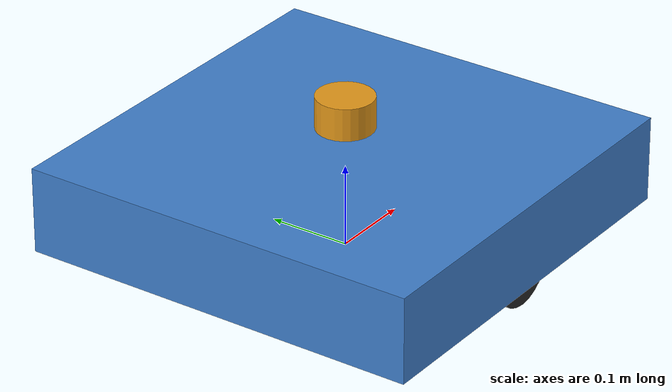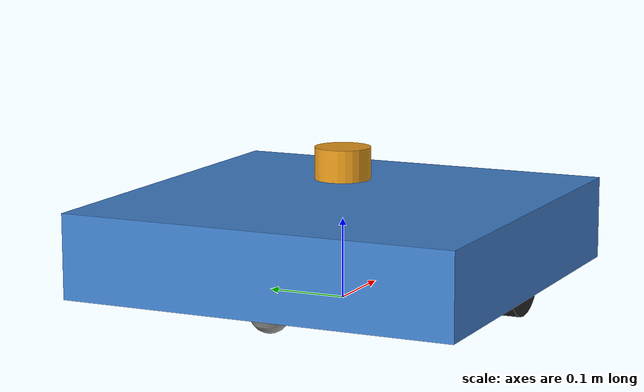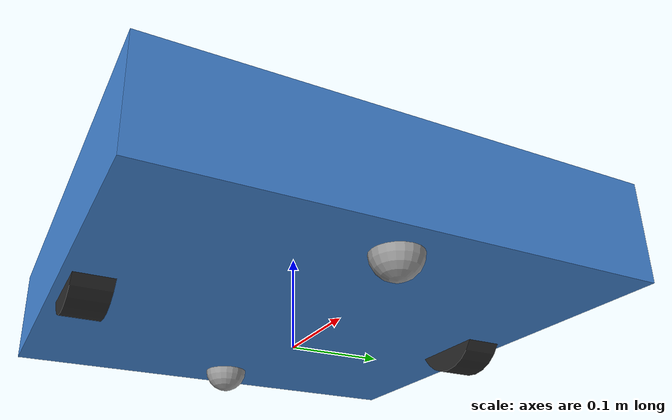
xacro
<?xml version="1.0"?>
<robot name="agv_500" xmlns:xacro="http://www.ros.org/wiki/xacro">

  <!-- 由 sim.launch.py 传入：使用 robot_localization EKF 融合里程计时置 false，
       让 EKF 独占 odom→base_footprint 的 TF（详见 plugins/gazebo_classic.xacro）。 -->
  <xacro:arg name="publish_odom_tf" default="true"/>

  <!-- ==================== 可调参数：只改这里 ==================== -->
  <xacro:property name="PI" value="3.141592653589793"/>

  <!-- 车体 -->
  <xacro:property name="body_L"    value="0.500"/>
  <xacro:property name="body_W"    value="0.500"/>
  <xacro:property name="body_H"    value="0.105"/>   <!-- 底盘厚 -->
  <xacro:property name="clearance" value="0.025"/>   <!-- 离地间隙（主流差速底盘：电机在底盘内，轮子嵌入属正常） -->
  <xacro:property name="body_mass" value="20.0"/>    <!-- 整备质量 -->

  <!-- 驱动轮 -->
  <xacro:property name="wheel_R"    value="0.050"/>  <!-- 半径 -->
  <xacro:property name="wheel_W"    value="0.040"/>  <!-- 轮宽 -->
  <xacro:property name="track"      value="0.440"/>  <!-- 轮距(左右轮心距, 沿 Y) -->
  <xacro:property name="drive_x"    value="0.000"/>  <!-- 驱动轴纵向位置(X): 0 = 居中 -->
  <xacro:property name="wheel_mass" value="0.5"/>

  <!-- 万向轮（前后各一，位于车体中线上 y = 0） -->
  <xacro:property name="caster_R"    value="0.025"/>
  <xacro:property name="caster_fx"   value="0.200"/> <!-- 前万向轮 X -->
  <xacro:property name="caster_rx"   value="-0.200"/><!-- 后万向轮 X -->
  <xacro:property name="caster_mass" value="0.2"/>

  <!-- 激光雷达：装在车体几何中心，扫描面 z = 0.170（高于底盘顶面 0.130） -->
  <xacro:property name="laser_R"    value="0.035"/>
  <xacro:property name="laser_H"    value="0.040"/>
  <xacro:property name="laser_x"    value="0.000"/>  <!-- 纵向位置(X): 车体几何中心（与 IMU 同轴） -->
  <xacro:property name="laser_z"    value="0.170"/>  <!-- 扫描面高度(光学中心) -->
  <xacro:property name="laser_mass" value="0.2"/>

  <xacro:property name="laser_scan_min" value="${-PI}"/>
  <xacro:property name="laser_scan_max" value="${PI}"/>
  <!-- 采样数：保持 1°/点（360° → 361 点，首尾重合于 ±π） -->
  <xacro:property name="laser_samples" value="361"/>

  <!-- IMU -->
  <xacro:property name="imu_z"    value="0.100"/>
  <xacro:property name="imu_mass" value="0.05"/>

  <!-- ==================== 材质 ==================== -->
  <material name="c_body">  <color rgba="0.25 0.50 0.80 1.0"/></material>
  <material name="c_wheel"> <color rgba="0.15 0.15 0.15 1.0"/></material>
  <material name="c_caster"><color rgba="0.60 0.60 0.60 1.0"/></material>
  <material name="c_laser"> <color rgba="0.90 0.60 0.10 1.0"/></material>

  <!-- ==================== 引入各模块宏定义 ==================== -->
  <!-- 车体 -->
  <xacro:include filename="base.urdf.xacro"/>
  <!-- 执行器：驱动轮 + 万向轮 -->
  <xacro:include filename="actuator/wheel.urdf.xacro"/>
  <xacro:include filename="actuator/caster.urdf.xacro"/>
  <!-- 传感器：激光雷达 + IMU -->
  <xacro:include filename="sensor/laser.urdf.xacro"/>
  <xacro:include filename="sensor/imu.urdf.xacro"/>
  <!-- 仿真插件：Gazebo Classic 11 -->
  <xacro:include filename="plugins/gazebo_classic.xacro"/>

  <!-- ==================== 实例化：拼装整车 ==================== -->
  <!-- 车体 -->
  <xacro:base_xacro/>

  <!-- 驱动轮（左右布置，y = ±track/2；驱动轴 x = drive_x 居中） -->
  <xacro:wheel_xacro wheel_name="left"  y_pos="${track/2}"/>
  <xacro:wheel_xacro wheel_name="right" y_pos="${-track/2}"/>

  <!-- 万向轮（前后各一，中线上 y = 0） -->
  <xacro:caster_xacro caster_name="caster_front" cx="${caster_fx}"/>
  <xacro:caster_xacro caster_name="caster_rear"  cx="${caster_rx}"/>

  <!-- 传感器 -->
  <xacro:laser_xacro/>
  <xacro:imu_xacro/>

  <!-- ==================== 仿真插件实例化（Gazebo Classic 11） ==================== -->
  <xacro:gazebo_classic_plugins publish_odom_tf="$(arg publish_odom_tf)"
                                laser_samples="${laser_samples}"/>

</robot>

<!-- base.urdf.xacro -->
<robot xmlns:xacro="http://www.ros.org/wiki/xacro">

  <!-- 引入惯性宏库（重复 include 无副作用） -->
  <xacro:include filename="common_inertia.xacro"/>

  <!-- 实例化：生成 base_footprint 与 base_link（两驱动轮轴中点在地面的投影为原点） -->
  <xacro:macro name="base_xacro" params="">

    <!-- base_footprint：机器人在地面的投影点（空 link），TF 树的根 -->
    <link name="base_footprint"/>

    <!-- base_footprint -> base_link：固定关节，与投影点重合（z = 0） -->
    <joint name="base_footprint_joint" type="fixed">
      <parent link="base_footprint"/>
      <child  link="base_link"/>
      <origin xyz="0 0 0" rpy="0 0 0"/>
    </joint>

    <!-- base_link：车体包络盒（500 x 500 x 105 mm），底面离地 clearance -->
    <link name="base_link">
      <visual>
        <origin xyz="0 0 ${clearance + body_H/2}" rpy="0 0 0"/>
        <geometry><box size="${body_L} ${body_W} ${body_H}"/></geometry>
        <material name="c_body"/>
      </visual>
      <collision>
        <origin xyz="0 0 ${clearance + body_H/2}" rpy="0 0 0"/>
        <geometry><box size="${body_L} ${body_W} ${body_H}"/></geometry>
      </collision>
      <xacro:inertia_box m="${body_mass}" x="${body_L}" y="${body_W}" z="${body_H}" oz="${clearance + body_H/2}"/>
    </link>

  </xacro:macro>

</robot>

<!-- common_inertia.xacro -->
<robot xmlns:xacro="http://www.ros.org/wiki/xacro">

  <!-- 长方体惯性：m 质量；x/y/z 三边长；oz 形心 z 偏移 -->
  <xacro:macro name="inertia_box" params="m x y z oz">
    <inertial>
      <origin xyz="0 0 ${oz}" rpy="0 0 0"/>
      <mass value="${m}"/>
      <inertia ixx="${m*(y*y+z*z)/12}" ixy="0" ixz="0"
               iyy="${m*(x*x+z*z)/12}" iyz="0"
               izz="${m*(x*x+y*y)/12}"/>
    </inertial>
  </xacro:macro>

  <!-- 圆柱惯性：轴向沿 Y（驱动轮轮轴方向） -->
  <xacro:macro name="inertia_cyl_y" params="m r l">
    <inertial>
      <origin xyz="0 0 0" rpy="0 0 0"/>
      <mass value="${m}"/>
      <inertia ixx="${m*(3*r*r+l*l)/12}" ixy="0" ixz="0"
               iyy="${m*r*r/2}"           iyz="0"
               izz="${m*(3*r*r+l*l)/12}"/>
    </inertial>
  </xacro:macro>

  <!-- 圆柱惯性：轴向沿 Z（激光雷达外壳） -->
  <xacro:macro name="inertia_cyl_z" params="m r l">
    <inertial>
      <origin xyz="0 0 0" rpy="0 0 0"/>
      <mass value="${m}"/>
      <inertia ixx="${m*(3*r*r+l*l)/12}" ixy="0" ixz="0"
               iyy="${m*(3*r*r+l*l)/12}" iyz="0"
               izz="${m*r*r/2}"/>
    </inertial>
  </xacro:macro>

  <!-- 球体惯性：万向轮用 -->
  <xacro:macro name="inertia_sphere" params="m r">
    <inertial>
      <origin xyz="0 0 0" rpy="0 0 0"/>
      <mass value="${m}"/>
      <inertia ixx="${2*m*r*r/5}" ixy="0" ixz="0"
               iyy="${2*m*r*r/5}" iyz="0"
               izz="${2*m*r*r/5}"/>
    </inertial>
  </xacro:macro>

</robot>

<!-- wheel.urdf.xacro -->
<robot xmlns:xacro="http://www.ros.org/wiki/xacro">

  <!-- 引入惯性宏库：提供圆柱/长方体/球体惯性计算 -->
  <xacro:include filename="../common_inertia.xacro"/>

  <!-- 驱动轮宏：wheel_name = left/right（决定连杆与关节名）；y_pos = 轮心横向位置（±track/2） -->
  <xacro:macro name="wheel_xacro" params="wheel_name y_pos">

    <!-- 车轮 link：黑色扁圆柱 -->
    <link name="${wheel_name}_wheel">
      <visual>
        <origin xyz="0 0 0" rpy="${PI/2} 0 0"/>
        <geometry><cylinder radius="${wheel_R}" length="${wheel_W}"/></geometry>
        <material name="c_wheel"/>
      </visual>
      <collision>
        <origin xyz="0 0 0" rpy="${PI/2} 0 0"/>
        <geometry><cylinder radius="${wheel_R}" length="${wheel_W}"/></geometry>
      </collision>
      <xacro:inertia_cyl_y m="${wheel_mass}" r="${wheel_R}" l="${wheel_W}"/>
    </link>

    <!-- 驱动轮关节：continuous = 可无限旋转（没有角度上下限） -->
    <joint name="${wheel_name}_wheel_joint" type="continuous">
      <parent link="base_link"/>
      <child  link="${wheel_name}_wheel"/>

      <origin xyz="${drive_x} ${y_pos} ${wheel_R}" rpy="0 0 0"/>

      <!-- 绕哪根轴转：必须写成 Y 轴(0 1 0)，两轮一致才能走直线/原地转 -->
      <axis xyz="0 1 0"/>

      <!-- continuous 关节只认这两项：effort=最大力矩(N·m)，velocity=最大角速度(rad/s)
           20 rad/s × wheel_R 0.05 = 1.0 m/s，就是最高车速；velocity 设小车会跑不动 -->
      <limit effort="20.0" velocity="20.0"/>

      <!-- 关节自身转动的阻力：damping=黏性阻尼 ∝ 转速，friction=恒定摩擦扭矩
           取小值近似"轴承顺滑"；抓地力靠 plugins 里的 mu1/mu2（Classic 常忽略本行 friction） -->
      <dynamics damping="0.05" friction="0.02"/>
    </joint>

  </xacro:macro>

</robot>

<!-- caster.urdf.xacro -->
<robot xmlns:xacro="http://www.ros.org/wiki/xacro">

  <!-- 引入惯性宏库：提供圆柱/长方体/球体惯性计算 -->
  <xacro:include filename="../common_inertia.xacro"/>

  <!-- 万向轮宏：caster_name（caster_front / caster_rear）；cx = 纵向位置（沿 X） -->
  <xacro:macro name="caster_xacro" params="caster_name cx">

    <!-- 万向轮 link：灰色小球（滚动体，球心离地 caster_R） -->
    <link name="${caster_name}">
      <visual>
        <origin xyz="0 0 0" rpy="0 0 0"/>
        <geometry><sphere radius="${caster_R}"/></geometry>
        <material name="c_caster"/>
      </visual>
      <collision>
        <origin xyz="0 0 0" rpy="0 0 0"/>
        <geometry><sphere radius="${caster_R}"/></geometry>
      </collision>
      <xacro:inertia_sphere m="${caster_mass}" r="${caster_R}"/>
    </link>

    <!-- 万向轮关节：fixed 固定，位置 x = cx, y = 0, z = 球半径（球心贴地高度） -->
    <joint name="${caster_name}_joint" type="fixed">
      <parent link="base_link"/>
      <child  link="${caster_name}"/>
      <origin xyz="${cx} 0 ${caster_R}" rpy="0 0 0"/>
    </joint>

  </xacro:macro>

</robot>

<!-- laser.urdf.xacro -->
<robot xmlns:xacro="http://www.ros.org/wiki/xacro">

  <!-- 引入惯性宏库：提供圆柱/长方体/球体惯性计算 -->
  <xacro:include filename="../common_inertia.xacro"/>

  <!-- 雷达宏：生成 laser link 与 laser_joint -->
  <xacro:macro name="laser_xacro" params="">

    <!-- 雷达 link：橙色圆柱外壳（半径 laser_R，高 laser_H） -->
    <link name="laser">
      <visual>
        <origin xyz="0 0 0" rpy="0 0 0"/>
        <geometry><cylinder radius="${laser_R}" length="${laser_H}"/></geometry>
        <material name="c_laser"/>
      </visual>
      <collision>
        <origin xyz="0 0 0" rpy="0 0 0"/>
        <geometry><cylinder radius="${laser_R}" length="${laser_H}"/></geometry>
        <material name="c_laser"/>
      </collision>
      <xacro:inertia_cyl_z m="${laser_mass}" r="${laser_R}" l="${laser_H}"/>
    </link>

    <!-- 雷达关节：fixed 固定到 base_link；位置 (laser_x, 0, laser_z) -->
    <joint name="laser_joint" type="fixed">
      <parent link="base_link"/>
      <child  link="laser"/>
      <origin xyz="${laser_x} 0 ${laser_z}" rpy="0 0 0"/>
    </joint>

  </xacro:macro>

</robot>

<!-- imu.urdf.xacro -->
<robot xmlns:xacro="http://www.ros.org/wiki/xacro">

  <!-- 引入惯性宏库：提供圆柱/长方体/球体惯性计算 -->
  <xacro:include filename="../common_inertia.xacro"/>

  <!-- IMU 宏：生成 imu_link 与 imu_joint -->
  <xacro:macro name="imu_xacro" params="">

    <!-- IMU link：30 x 30 x 10 mm 小方块（视觉上与材质 c_laser 同色） -->
    <link name="imu_link">
      <visual>
        <geometry><box size="0.03 0.03 0.01"/></geometry>
        <material name="c_laser"/>
      </visual>
      <collision>
        <geometry><box size="0.03 0.03 0.01"/></geometry>
      </collision>
      <xacro:inertia_box m="${imu_mass}" x="0.03" y="0.03" z="0.01" oz="0"/>
    </link>

    <!-- IMU 关节：fixed 固定到 base_link；位置 (0, 0, imu_z) -->
    <joint name="imu_joint" type="fixed">
      <parent link="base_link"/>
      <child  link="imu_link"/>
      <origin xyz="0 0 ${imu_z}" rpy="0 0 0"/>
    </joint>

  </xacro:macro>

</robot>
